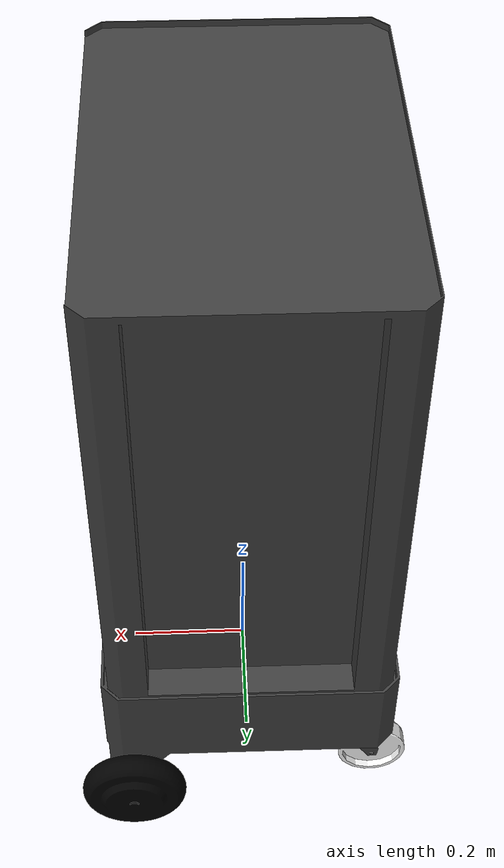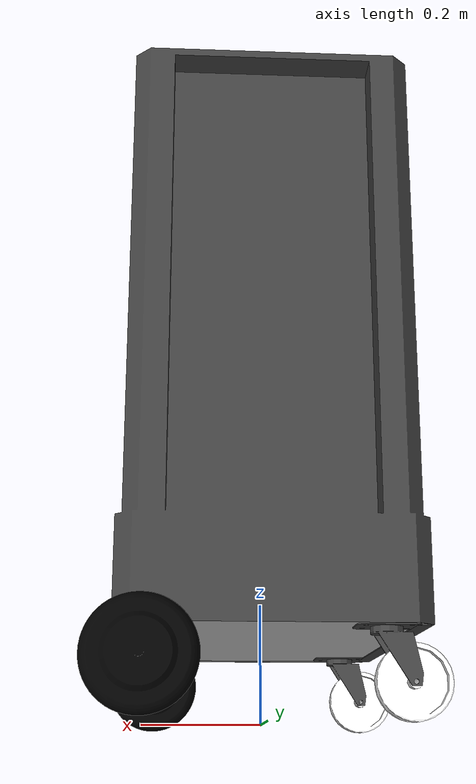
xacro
<?xml version="1.0"?>
<robot name="dp_robot" xmlns:xacro="http://www.ros.org/wiki/xacro">

    <!-- Constants -->
    <xacro:property name="PI" value="3.1415926535897931"/>

    <!-- Parameters -->
    <xacro:property name="boxLength" value="0.667" /> <!-- upper part length -->
    <xacro:property name="boxDepth" value="0.454" />  <!-- upper part width -->

    <xacro:property name="robotMass" value="56" />      <!-- Weight -->
    <xacro:property name="robotHeight" value="1.000" /> <!-- box + robot height -->

    <xacro:property name="chassisLength" value="0.688" /> <!-- upper part length -->
    <xacro:property name="chassisWidth" value="0.473" />  <!-- lower part width -->

    <xacro:property name="wheelRadius" value="${0.170/2}" />
    <xacro:property name="wheelOffsetY" value="-0.045" />
    <xacro:property name="wheelOffsetZ" value="0.550" /> <!-- box + robot height -->

    <!-- Meshes -->
    <xacro:property name="mesh_chassis" value="package://dp_description_pkg/meshes/chassis_v4.dae" />      <!-- Weight -->
    <xacro:property name="mesh_kinect" value="package://dp_description_pkg/meshes/kinect_v4.dae" />      <!-- Weight -->

    <!-- Include files -->
    <xacro:include filename="$(find dp_description_pkg)/urdf/materials.xacro" />
    <xacro:include filename="$(find dp_description_pkg)/urdf/macros.xacro" />
    <xacro:include filename="$(find dp_description_pkg)/urdf/gazebo.xacro" />

    <!-- Object creating macros -->
    <xacro:include filename="$(find dp_description_pkg)/urdf/wheels.xacro" />
    <xacro:include filename="$(find dp_description_pkg)/urdf/caster.xacro" />

    <!-- Base link (no ineritia!)  -->

    <link name="link_base" />

    <joint name="joint_base" type="fixed">
      <parent link="link_base"/>
      <child link="link_chassis"/>
    </joint>
    <!-- Chassis (box+chassis) -->
    <link name='link_chassis'>
        <inertial>
            <origin xyz="0 0 ${wheelOffsetZ+wheelRadius}" rpy="0 0 0"/>
            <mass value="${robotMass}"/>
            <xacro:box_inertia m="${robotMass}" x="${boxDepth}" y="${boxLength}" z="${robotHeight}"/>
        </inertial>
        <collision>
            <origin xyz="0 0 ${wheelOffsetZ+wheelRadius}" rpy="0 0 0"/>
                <geometry>
                    <box size="${boxDepth} ${boxLength} ${robotHeight}"/>
                </geometry>
        </collision>
        <visual>
            <origin xyz="0 0 ${wheelOffsetZ+wheelRadius}" rpy="0 0 ${-PI/2}"/>
                <geometry>
					<mesh filename="${mesh_chassis}"/>
				</geometry>
        </visual>
    </link>

    <!-- Sensors (kinect+pozyx+imu)-->
    <link name="link_kinect_sensor">
        <inertial>
            <origin xyz="0 0 0" rpy="0 0 ${PI/2}" />
            <mass value="1" />
            <xacro:box_inertia m="0.5" x="0.073000" y="0.276000" z="0.072000" />
        </inertial>
        <collision name="collision">
          <origin xyz="0 0 0" rpy="0 0 ${PI/2}" />
            <geometry>
                <box size="0.276000 0.073000 0.072000"/>
            </geometry>
        </collision>
        <visual>
          <origin xyz="0 0 0" rpy="0 0 ${PI/2}" />
            <geometry>
				<mesh filename="${mesh_kinect}"/>
            </geometry>
        </visual>
    </link>

    <joint name="joint_kinect_sensor" type="fixed">
        <origin xyz="0.2 0 0.22" rpy="0 0 0"/>
        <parent link="link_chassis"/>
        <child link="link_kinect_sensor"/>
    </joint>

    <!-- From gazebo kinect Rotates kinect if needed -->
    <link name="link_gazebo_kinect_frame"></link>

    <joint name="joint_gazebo_kinect_frame" type="fixed">
        <origin xyz="0 0 0" rpy="${-PI/2} 0 ${-PI/2}"/>
        <parent link="link_kinect_sensor"/>
        <child link="link_gazebo_kinect_frame"/>
    </joint>

    <!-- Wheels (motors+casters)-->
    <xacro:wheel wheel_prefix="left" rot="1" parent_link="link_chassis" >
        <origin xyz="${wheelOffsetY+chassisWidth/2} ${1*(wheelWidth/2+chassisLength/2)} ${wheelRadius}" rpy="0 0 0" />
    </xacro:wheel>

    <xacro:wheel wheel_prefix="right" rot="-1" parent_link="link_chassis" >
        <origin xyz="${wheelOffsetY+chassisWidth/2} -${1*(wheelWidth/2+chassisLength/2)} ${wheelRadius}" rpy="0 0 0" />
    </xacro:wheel>

    <xacro:caster caster_prefix="right" parent_link="link_chassis">
        <origin xyz="${0.065-chassisWidth/2} ${1*(-0.05+boxLength/2)} 0.135" rpy="0 0 ${PI/2}" />
    </xacro:caster>

    <xacro:caster caster_prefix="left" parent_link="link_chassis">
        <origin xyz="${0.065-chassisWidth/2} ${-1*(-0.05+boxLength/2)} 0.135" rpy="0 0 ${PI/2}" />
    </xacro:caster>

 </robot>

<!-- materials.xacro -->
<robot name="dp_robot" xmlns:xacro="https://www.ros.org/wiki/xacro" >
    <material name="black">
        <color rgba="0.0 0.0 0.0 1.0"/>
    </material>
    <material name="blue">
        <color rgba="0.203125 0.23828125 0.28515625 1.0"/>
    </material>
    <material name="green">
        <color rgba="0.0 0.8 0.0 1.0"/>
    </material>
    <material name="grey">
        <color rgba="0.2 0.2 0.2 1.0"/>
    </material>
    <material name="orange">
        <color rgba="1.0 0.423529411765 0.0392156862745 1.0"/>
    </material>
    <material name="brown">
        <color rgba="0.870588235294 0.811764705882 0.764705882353 1.0"/>
    </material>
    <material name="red">
        <color rgba="0.80078125 0.12890625 0.1328125 1.0"/>
    </material>
    <material name="white">
        <color rgba="1.0 1.0 1.0 1.0"/>
    </material>
</robot>

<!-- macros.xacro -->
<robot name="dp_robot" xmlns:xacro="http://www.ros.org/wiki/xacro">
    <xacro:macro name="cylinder_inertia" params="m r h">
      <inertia  ixx="${m*(3*r*r+h*h)/12}" ixy = "0" ixz = "0"
        iyy="${m*(3*r*r+h*h)/12}" iyz = "0"
        izz="${m*r*r/2}" />
    </xacro:macro>

    <xacro:macro name="box_inertia" params="m x y z">
      <inertia  ixx="${m*(y*y+z*z)/12}" ixy = "0" ixz = "0"
        iyy="${m*(x*x+z*z)/12}" iyz = "0"
        izz="${m*(x*x+z*z)/12}" />
    </xacro:macro>

    <xacro:macro name="sphere_inertia" params="m r">
      <inertia  ixx="${2*m*r*r/5}" ixy = "0" ixz = "0"
        iyy="${2*m*r*r/5}" iyz = "0"
        izz="${2*m*r*r/5}" />
    </xacro:macro>

</robot>

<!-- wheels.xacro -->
<robot name="dp_robot" xmlns:xacro="http://www.ros.org/wiki/xacro">

    <xacro:property name="wheelRadius" value="${0.170/2}" />
    <xacro:property name="wheelWidth" value="0.0648" />
    <xacro:property name="wheelMass" value="2.95" />

    <xacro:property name="mesh_wheel" value="package://dp_description_pkg/meshes/wheel_single_v4.dae" />

    <xacro:macro name="wheel" params="wheel_prefix rot parent_link *joint_pose">
        <link name="${wheel_prefix}_wheel">
          <collision>
            <origin xyz="0 0 0" rpy="0 ${PI/2} ${rot*PI/2}" />
            <geometry>
              <cylinder length="${wheelWidth}" radius="${wheelRadius}"/>
            </geometry>
          </collision>

          <visual>
            <origin xyz="0 0 0" rpy="0 0 ${rot*PI/2}" />
            <geometry>
			    <mesh filename="${mesh_wheel}"/>
	    	</geometry>
            <material name="black"/>
          </visual>

          <inertial>
            <origin xyz="0 0 0" rpy="0 0 ${rot*PI/2}" />
            <mass value="${wheelMass}"/>
            <xacro:cylinder_inertia m="${wheelMass}" r="${wheelRadius}" h="${wheelWidth}"/>
          </inertial>
        </link>

        <joint name="joint_${wheel_prefix}_wheel" type="continuous">
          <parent link="${parent_link}"/>
          <child link="${wheel_prefix}_wheel"/>
          <xacro:insert_block name="joint_pose"/>
          <axis xyz="0 1 0" rpy="0 0 0" />
          <limit effort="100" velocity="100"/>
          <joint_properties damping="0.0" friction="0.0"/>
        </joint>

        <gazebo reference="${wheel_prefix}_wheel">
            <mu1 value="1.0"/>
            <mu2 value="1.0"/>
            <kp  value="10000000.0" />
            <kd  value="1.0" />
            <fdir1 value="1 0 0"/>
        </gazebo>

    </xacro:macro>

</robot>

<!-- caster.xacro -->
<robot xmlns:xacro="http://ros.org/wiki/xacro" >

	<!-- Meshes -->
    <xacro:property name="mesh_caster" value="package://dp_description_pkg/meshes/caster_wheel_v4.dae" />
  	<xacro:property name="mesh_base" value="package://dp_description_pkg/meshes/caster_holder_v4.dae" />
	<!-- Caster Dimensions -->
    <xacro:property name="caster_wheel_length" value="0.030" />
    <xacro:property name="caster_wheel_radius" value="${0.110/2}" />
	<xacro:property name="caster_base_joint_y" value="0.0378" />
	<xacro:property name="caster_base_joint_x" value="0" />
    <xacro:property name="caster_base_joint_z" value="-0.0826" />

	<!-- Parameters -->
	<xacro:property name="wheel_kp" value="1000000" />
    <xacro:property name="wheel_kd" value="1" />
    <xacro:property name="wheel_mu1" value="10000000" />
    <xacro:property name="wheel_mu2" value="10000000" />

    <xacro:macro name="caster" params="caster_prefix parent_link *joint_pose">
		<!-- Caster Wheel Link -->
		<link name="${caster_prefix}_caster_link">
			<inertial>
				<mass value="0.038" />
				<origin xyz="0 0 0" />
				<inertia  ixx="0.000009" ixy="0" ixz="0" iyy="0.000013" iyz="0" izz="0.000008" />
			</inertial>

			<visual>
                <origin xyz="0 0 0" rpy="0 0 0" />
				<geometry>
					<mesh filename="${mesh_caster}"/>
				</geometry>
				<material name="white" />
			</visual>

			<collision>
				<origin xyz="0 0 0" rpy="0 ${PI/2} 0" />
				<geometry>
					<cylinder length="${caster_wheel_length}" radius="${caster_wheel_radius}" />
				</geometry>
			</collision>
		</link>

		<!-- Caster Base Link -->
        <link name="${caster_prefix}_caster_base">
			<inertial>
				<mass value="0.066" />
				<origin xyz="0 0 0" />
				<inertia  ixx="0.00004" ixy="0" ixz="0.00002" iyy="0.00005" iyz="0" izz="0.000035" />
			</inertial>

			<visual>
				<origin xyz="0 0 0" rpy="0 0 0" />
				<geometry>
					<mesh filename="${mesh_base}" />
				</geometry>
			</visual>
		</link>

		<!-- Caster Base Link and Wheel Link Joint -->
        <joint name="${caster_prefix}_cwheel" type="continuous">
			<parent link="${caster_prefix}_caster_base"/>
			<child link="${caster_prefix}_caster_link"/>
			<origin xyz="${caster_base_joint_x} ${caster_base_joint_y} ${caster_base_joint_z}" rpy="0 0 0" />
			<axis xyz="1 0 0" rpy="0 0 0" />
		</joint>

		<!-- Caster base and parent joint -->
		<joint name="${caster_prefix}_caster" type="continuous">
			<parent link="${parent_link}"/>
			<child link="${caster_prefix}_caster_base"/>
			<xacro:insert_block name="joint_pose"/>
			<axis xyz="0 0 1" rpy="0 0 0" />
			<dynamics friction="0.100" />
		</joint>

        <gazebo reference="${caster_prefix}_caster_base">
	        <mu1 value="${wheel_mu1}"/>
	        <mu2 value="${wheel_mu2}"/>
	        <kp>${wheel_kp}</kp>
	        <kd>${wheel_kd}</kd>
	        <fdir1 value="1 0 0"/>
        </gazebo>

        <gazebo reference="${caster_prefix}_caster_link">
            <mu1 value="${wheel_mu1}"/>
            <mu2 value="${wheel_mu2}"/>
            <kp>${wheel_kp}</kp>
            <kd>${wheel_kd}</kd>
            <dampingFactor>0.05</dampingFactor>
            <fdir1 value="1 0 0"/>
        </gazebo>

	</xacro:macro>
</robot>
